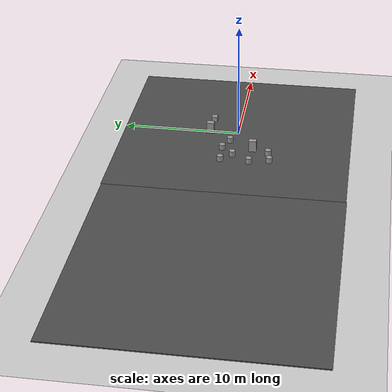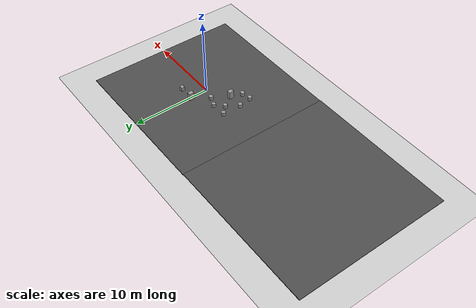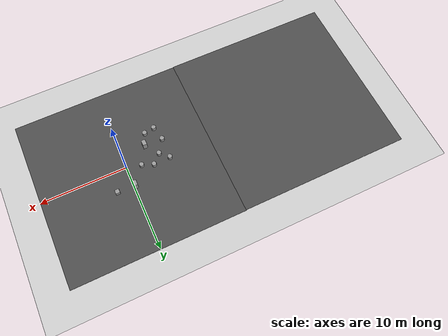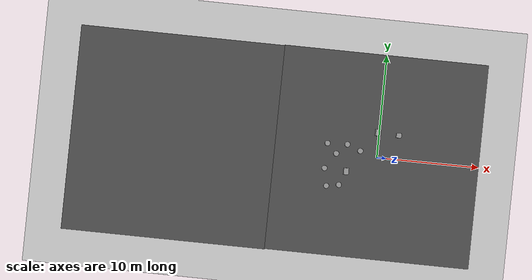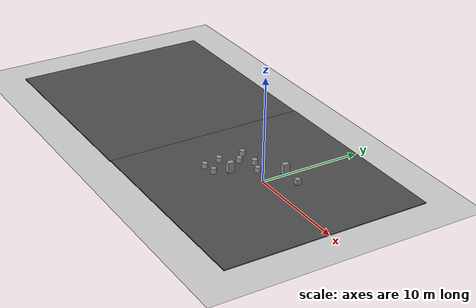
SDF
<sdf version="1.7">
 <world name="default">
  <model name="ground_plane">
   <static>1</static>
   <link name="link">
    <collision name="collision">
     <geometry><plane><normal>0 0 1</normal><size>100 100</size></plane></geometry>
     <surface>
      <contact><collide_bitmask>65535</collide_bitmask></contact>
      <friction><ode><mu>100</mu><mu2>50</mu2></ode></friction>
     </surface>
    </collision>
    <visual name="visual">
     <cast_shadows>0</cast_shadows>
     <geometry><plane><normal>0 0 1</normal><size>100 100</size></plane></geometry>
     <material>
      <script><uri>file://media/materials/scripts/gazebo.material</uri><name>Gazebo/Grey</name></script>
     </material>
    </visual>
   </link>
  </model>
  <model name="asphalt_plane">
   <static>1</static>
   <link name="link">
    <collision name="collision"><geometry><box><size>20 20 0.1</size></box></geometry></collision>
    <visual name="visual">
     <cast_shadows>0</cast_shadows>
     <geometry><box><size>20 20 0.1</size></box></geometry>
     <material>
      <script>
       <uri>model://asphalt_plane/materials/scripts</uri>
       <uri>model://asphalt_plane/materials/textures</uri>
       <name>vrc/asphalt</name>
      </script>
     </material>
    </visual>
   </link>
   <pose>-0.033327 0.054034 0 0 -0 0</pose>
  </model>
  <model name="asphalt_plane_clone_3">
   <static>1</static>
   <link name="link">
    <collision name="collision"><geometry><box><size>20 20 0.1</size></box></geometry></collision>
    <visual name="visual">
     <cast_shadows>0</cast_shadows>
     <geometry><box><size>20 20 0.1</size></box></geometry>
     <material>
      <script>
       <uri>model://asphalt_plane/materials/scripts</uri>
       <uri>model://asphalt_plane/materials/textures</uri>
       <name>vrc/asphalt</name>
      </script>
     </material>
    </visual>
   </link>
   <pose>-20 0 0 0 -0 0</pose>
  </model>
  <model name="unit_box_0_clone_1">
   <pose>1.88701 2.35733 0.301356 0 -0 1e-06</pose>
   <link name="link">
    <inertial>
     <mass>1</mass>
     <inertia>
      <ixx>0.166667</ixx>
      <ixy>0</ixy>
      <ixz>0</ixz>
      <iyy>0.166667</iyy>
      <iyz>0</iyz>
      <izz>0.166667</izz>
     </inertia>
    </inertial>
    <collision name="collision">
     <geometry><box><size>0.495294 0.467832 0.502712</size></box></geometry>
    </collision>
    <visual name="visual">
     <geometry><box><size>0.495294 0.467832 0.502712</size></box></geometry>
     <material>
      <script><name>Gazebo/Grey</name><uri>file://media/materials/scripts/gazebo.material</uri></script>
     </material>
    </visual>
   </link>
  </model>
  <model name="unit_cylinder_clone">
   <pose>-3.99999 1.8e-05 0.294837 -5e-06 7e-06 0.000287</pose>
   <link name="link">
    <inertial>
     <mass>1</mass>
     <inertia><ixx>0.145833</ixx><ixy>0</ixy><ixz>0</ixz><iyy>0.145833</iyy><iyz>0</iyz><izz>0.125</izz></inertia>
    </inertial>
    <collision name="collision">
     <geometry><cylinder><radius>0.264047</radius><length>0.48967</length></cylinder></geometry>
    </collision>
    <visual name="visual">
     <geometry><cylinder><radius>0.264047</radius><length>0.48967</length></cylinder></geometry>
     <material>
      <script><name>Gazebo/Grey</name><uri>file://media/materials/scripts/gazebo.material</uri></script>
     </material>
    </visual>
   </link>
  </model>
  <model name="unit_cylinder_clone_0">
   <pose>-3 0.999995 0.294835 0 -0 0.000699</pose>
   <link name="link">
    <inertial>
     <mass>1</mass>
     <inertia><ixx>0.145833</ixx><ixy>0</ixy><ixz>0</ixz><iyy>0.145833</iyy><iyz>0</iyz><izz>0.125</izz></inertia>
    </inertial>
    <collision name="collision">
     <geometry><cylinder><radius>0.264047</radius><length>0.48967</length></cylinder></geometry>
    </collision>
    <visual name="visual">
     <geometry><cylinder><radius>0.264047</radius><length>0.48967</length></cylinder></geometry>
     <material>
      <script><name>Gazebo/Grey</name><uri>file://media/materials/scripts/gazebo.material</uri></script>
     </material>
    </visual>
   </link>
  </model>
  <model name="unit_cylinder_clone_1">
   <pose>-1.69363 0.491638 0.294835 0 -0 0.000637</pose>
   <link name="link">
    <inertial>
     <mass>1</mass>
     <inertia><ixx>0.145833</ixx><ixy>0</ixy><ixz>0</ixz><iyy>0.145833</iyy><iyz>0</iyz><izz>0.125</izz></inertia>
    </inertial>
    <collision name="collision">
     <geometry><cylinder><radius>0.264047</radius><length>0.48967</length></cylinder></geometry>
    </collision>
    <visual name="visual">
     <geometry><cylinder><radius>0.264047</radius><length>0.48967</length></cylinder></geometry>
     <material>
      <script><name>Gazebo/Grey</name><uri>file://media/materials/scripts/gazebo.material</uri></script>
     </material>
    </visual>
   </link>
  </model>
  <model name="unit_cylinder_clone_8">
   <pose>-3.45714 -2.99997 0.294836 4e-06 2e-06 9.4e-05</pose>
   <link name="link">
    <inertial>
     <mass>1</mass>
     <inertia><ixx>0.145833</ixx><ixy>0</ixy><ixz>0</ixz><iyy>0.145833</iyy><iyz>0</iyz><izz>0.125</izz></inertia>
    </inertial>
    <collision name="collision">
     <geometry><cylinder><radius>0.264047</radius><length>0.48967</length></cylinder></geometry>
    </collision>
    <visual name="visual">
     <geometry><cylinder><radius>0.264047</radius><length>0.48967</length></cylinder></geometry>
     <material>
      <script><name>Gazebo/Grey</name><uri>file://media/materials/scripts/gazebo.material</uri></script>
     </material>
    </visual>
   </link>
  </model>
  <model name="unit_cylinder_clone_11">
   <pose>-4.6543 -3.21413 0.294835 0 -0 6e-05</pose>
   <link name="link">
    <inertial>
     <mass>1</mass>
     <inertia><ixx>0.145833</ixx><ixy>0</ixy><ixz>0</ixz><iyy>0.145833</iyy><iyz>0</iyz><izz>0.125</izz></inertia>
    </inertial>
    <collision name="collision">
     <geometry><cylinder><radius>0.264047</radius><length>0.48967</length></cylinder></geometry>
    </collision>
    <visual name="visual">
     <geometry><cylinder><radius>0.264047</radius><length>0.48967</length></cylinder></geometry>
     <material>
      <script><name>Gazebo/Grey</name><uri>file://media/materials/scripts/gazebo.material</uri></script>
     </material>
    </visual>
   </link>
  </model>
  <model name="unit_cylinder_clone_12">
   <pose>-4.99993 -1.52052 0.294835 0 -0 0.00019</pose>
   <link name="link">
    <inertial>
     <mass>1</mass>
     <inertia><ixx>0.145833</ixx><ixy>0</ixy><ixz>0</ixz><iyy>0.145833</iyy><iyz>0</iyz><izz>0.125</izz></inertia>
    </inertial>
    <collision name="collision">
     <geometry><cylinder><radius>0.264047</radius><length>0.48967</length></cylinder></geometry>
    </collision>
    <visual name="visual">
     <geometry><cylinder><radius>0.264047</radius><length>0.48967</length></cylinder></geometry>
     <material>
      <script><name>Gazebo/Grey</name><uri>file://media/materials/scripts/gazebo.material</uri></script>
     </material>
    </visual>
   </link>
  </model>
  <model name="unit_cylinder_clone_16">
   <pose>-4.94243 0.924916 0.294837 -4e-06 7e-06 0.000401</pose>
   <link name="link">
    <inertial>
     <mass>1</mass>
     <inertia><ixx>0.145833</ixx><ixy>0</ixy><ixz>0</ixz><iyy>0.145833</iyy><iyz>0</iyz><izz>0.125</izz></inertia>
    </inertial>
    <collision name="collision">
     <geometry><cylinder><radius>0.264047</radius><length>0.48967</length></cylinder></geometry>
    </collision>
    <visual name="visual">
     <geometry><cylinder><radius>0.264047</radius><length>0.48967</length></cylinder></geometry>
     <material>
      <script><name>Gazebo/Grey</name><uri>file://media/materials/scripts/gazebo.material</uri></script>
     </material>
    </visual>
   </link>
  </model>
  <model name="unit_box_3">
   <pose>-0.185436 2.4314 0.55 0 -0 0</pose>
   <link name="link">
    <inertial>
     <mass>1</mass>
     <inertia>
      <ixx>0.166667</ixx>
      <ixy>0</ixy>
      <ixz>0</ixz>
      <iyy>0.166667</iyy>
      <iyz>0</iyz>
      <izz>0.166667</izz>
     </inertia>
    </inertial>
    <collision name="collision"><geometry><box><size>0.473217 0.637104 1</size></box></geometry></collision>
    <visual name="visual">
     <geometry><box><size>0.473217 0.637104 1</size></box></geometry>
     <material>
      <script><name>Gazebo/Grey</name><uri>file://media/materials/scripts/gazebo.material</uri></script>
     </material>
    </visual>
   </link>
  </model>
  <model name="unit_box_3_clone_0">
   <pose>-2.8958 -1.60924 0.55 0 -0 0</pose>
   <link name="link">
    <inertial>
     <mass>1</mass>
     <inertia>
      <ixx>0.166667</ixx>
      <ixy>0</ixy>
      <ixz>0</ixz>
      <iyy>0.166667</iyy>
      <iyz>0</iyz>
      <izz>0.166667</izz>
     </inertia>
    </inertial>
    <collision name="collision"><geometry><box><size>0.473217 0.637104 1</size></box></geometry></collision>
    <visual name="visual">
     <geometry><box><size>0.473217 0.637104 1</size></box></geometry>
     <material>
      <script><name>Gazebo/Grey</name><uri>file://media/materials/scripts/gazebo.material</uri></script>
     </material>
    </visual>
   </link>
  </model>
 </world>
</sdf>
